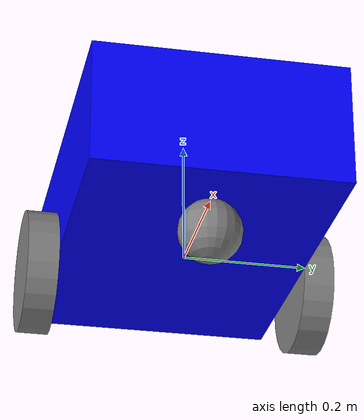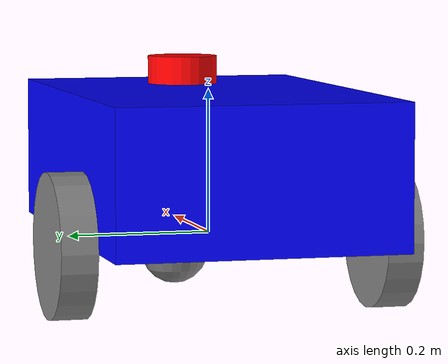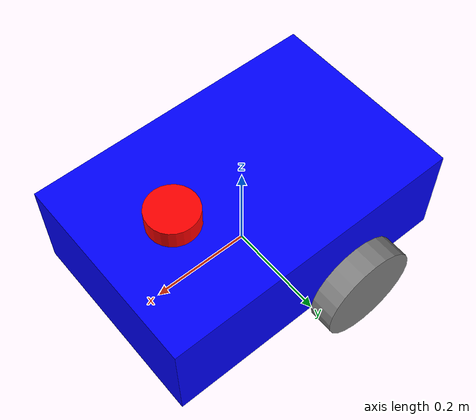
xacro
<?xml version="1.0"?>
<robot xmlns:xacro="http://www.ros.org/wiki/xacro" name="my_robot">

    <material name="blue"> <color rgba="0 0 1 1"/> </material>
    <material name="grey"> <color rgba="0.5 0.5 0.5 1"/> </material>
    <material name="red"> <color rgba="1 0 0 1"/> </material>

    <xacro:macro name="inertial_sphere" params="mass radius *origin">
        <inertial>
            <xacro:insert_block name="origin"/>
            <mass value="${mass}"/>
            <inertia ixx="${(2/5) * mass * (radius*radius)}" ixy="0.0" ixz="0.0"
                     iyy="${(2/5) * mass * (radius*radius)}" iyz="0.0"
                     izz="${(2/5) * mass * (radius*radius)}"/>
        </inertial>
    </xacro:macro>

    <xacro:macro name="inertial_cylinder" params="mass length radius *origin">
        <inertial>
            <xacro:insert_block name="origin"/>
            <mass value="${mass}"/>
            <inertia ixx="${(1/12) * mass * (3*radius*radius + length*length)}" ixy="0.0" ixz="0.0"
                     iyy="${(1/12) * mass * (3*radius*radius + length*length)}" iyz="0.0"
                     izz="${(1/2) * mass * (radius*radius)}"/>
        </inertial>
    </xacro:macro>

    <xacro:macro name="inertial_box" params="mass x y z *origin">
        <inertial>
            <xacro:insert_block name="origin"/>
            <mass value="${mass}"/>
            <inertia ixx="${(1/12) * mass * (y*y + z*z)}" ixy="0.0" ixz="0.0"
                     iyy="${(1/12) * mass * (x*x + z*z)}" iyz="0.0"
                     izz="${(1/12) * mass * (x*x + y*y)}"/>
        </inertial>
    </xacro:macro>

    <link name="base_footprint"/>

    <joint name="base_footprint_joint" type="fixed">
        <parent link="base_footprint"/>
        <child link="base_link"/>
        <origin xyz="0 0 0.1" rpy="0 0 0"/>
    </joint>

    <link name="base_link">
        <visual>
            <geometry> <box size="0.6 0.4 0.2"/> </geometry>
            <material name="blue"/>
        </visual>
        <collision>
            <geometry> <box size="0.6 0.4 0.2"/> </geometry>
        </collision>
        <xacro:inertial_box mass="0.5" x="0.6" y="0.4" z="0.2">
            <origin xyz="0 0 0" rpy="0 0 0"/>
        </xacro:inertial_box>
    </link>

    <link name="left_wheel">
        <visual>
            <geometry> <cylinder radius="0.1" length="0.05"/> </geometry>
            <material name="grey"/>
        </visual>
        <collision>
            <geometry> <cylinder radius="0.1" length="0.05"/> </geometry>
        </collision>
        <xacro:inertial_cylinder mass="0.1" length="0.05" radius="0.1">
            <origin xyz="0 0 0" rpy="0 0 0"/>
        </xacro:inertial_cylinder>
    </link>

    <joint name="left_wheel_joint" type="continuous">
        <parent link="base_link"/>
        <child link="left_wheel"/>
        <origin xyz="-0.1 0.225 -0.1" rpy="-${pi/2} 0 0"/>
        <axis xyz="0 0 1"/>
    </joint>

    <link name="right_wheel">
        <visual>
            <geometry> <cylinder radius="0.1" length="0.05"/> </geometry>
            <material name="grey"/>
        </visual>
        <collision>
            <geometry> <cylinder radius="0.1" length="0.05"/> </geometry>
        </collision>
        <xacro:inertial_cylinder mass="0.1" length="0.05" radius="0.1">
            <origin xyz="0 0 0" rpy="0 0 0"/>
        </xacro:inertial_cylinder>
    </link>

    <joint name="right_wheel_joint" type="continuous">
        <parent link="base_link"/>
        <child link="right_wheel"/>
        <origin xyz="-0.1 -0.225 -0.1" rpy="${pi/2} 0 0"/>
        <axis xyz="0 0 -1"/>
    </joint>

    <link name="caster_wheel">
        <visual>
            <geometry> <sphere radius="0.05"/> </geometry>
            <material name="grey"/>
        </visual>
        <collision>
            <geometry> <sphere radius="0.05"/> </geometry>
        </collision>
        <xacro:inertial_sphere mass="0.1" radius="0.05">
            <origin xyz="0 0 0" rpy="0 0 0"/>
        </xacro:inertial_sphere>
    </link>

    <joint name="caster_wheel_joint" type="fixed">
        <parent link="base_link"/>
        <child link="caster_wheel"/>
        <origin xyz="0.2 0 -0.15" rpy="0 0 0"/>
    </joint>

    <link name="laser_frame">
        <visual>
            <geometry> <cylinder radius="0.05" length="0.04"/> </geometry>
            <material name="red"/>
        </visual>
        <collision>
            <geometry> <cylinder radius="0.05" length="0.04"/> </geometry>
        </collision>
        <xacro:inertial_cylinder mass="0.1" length="0.04" radius="0.05">
            <origin xyz="0 0 0" rpy="0 0 0"/>
        </xacro:inertial_cylinder>
    </link>

    <joint name="laser_joint" type="fixed">
        <parent link="base_link"/>
        <child link="laser_frame"/>
        <origin xyz="0.15 0 0.12" rpy="0 0 0"/>
    </joint>

    <gazebo>
        <plugin name="gz::sim::systems::DiffDrive" filename="gz-sim-diff-drive-system">
            <left_joint>left_wheel_joint</left_joint>
            <right_joint>right_wheel_joint</right_joint>
            <wheel_separation>0.45</wheel_separation>
            <wheel_radius>0.1</wheel_radius>

            <topic>cmd_vel</topic>

            <publish_odom>true</publish_odom>
            <publish_odom_tf>true</publish_odom_tf>
            <publish_wheel_tf>false</publish_wheel_tf>
            <use_frame_id_prefix>false</use_frame_id_prefix>
            <odometry_topic>odom</odometry_topic>
            <odometry_frame>odom</odometry_frame>
            <robot_base_frame>base_footprint</robot_base_frame>
        </plugin>

        <plugin name="gz::sim::systems::JointStatePublisher" filename="gz-sim-joint-state-publisher-system">
            <topic>joint_states</topic>
            <joint_name>left_wheel_joint</joint_name>
            <joint_name>right_wheel_joint</joint_name>
        </plugin>
    </gazebo>

    <gazebo reference="laser_frame">
        <sensor name="gpu_lidar" type="gpu_lidar">
            <pose>0 0 0 0 0 0</pose>
            <visualize>true</visualize>
            <update_rate>10</update_rate>
            <always_on>true</always_on>
            <lidar>
                <scan>
                    <horizontal>
                        <samples>360</samples>
                        <resolution>1</resolution>
                        <min_angle>-3.14</min_angle>
                        <max_angle>3.14</max_angle>
                    </horizontal>
                </scan>
                <range>
                    <min>0.10</min>
                    <max>12.0</max>
                </range>
            </lidar>
            <topic>scan</topic>
            <gz_frame_id>laser_frame</gz_frame_id>
        </sensor>
    </gazebo>

</robot>
